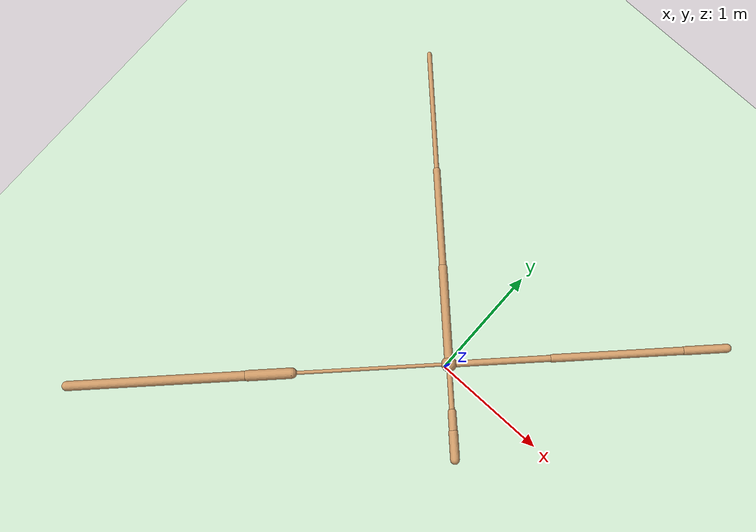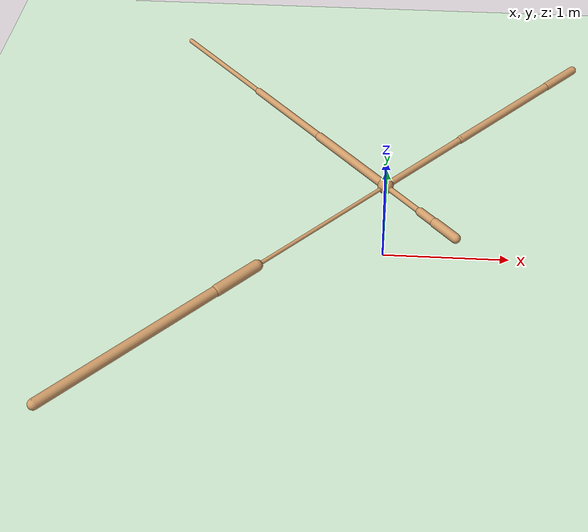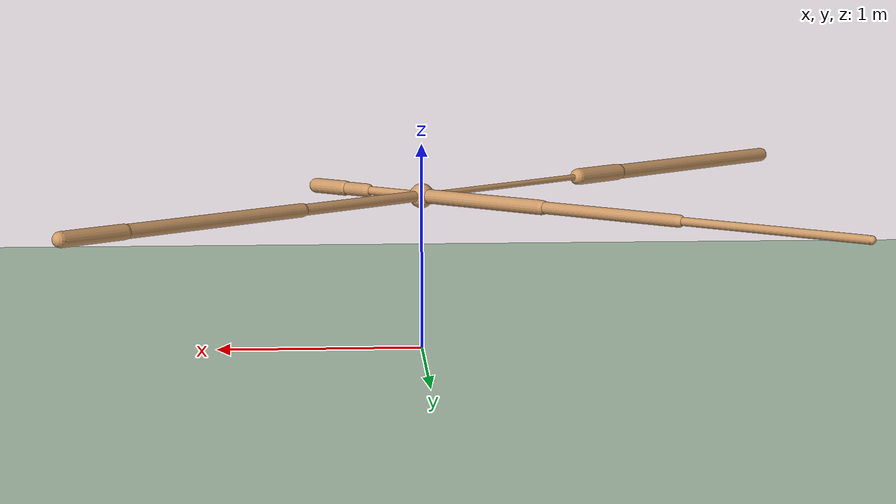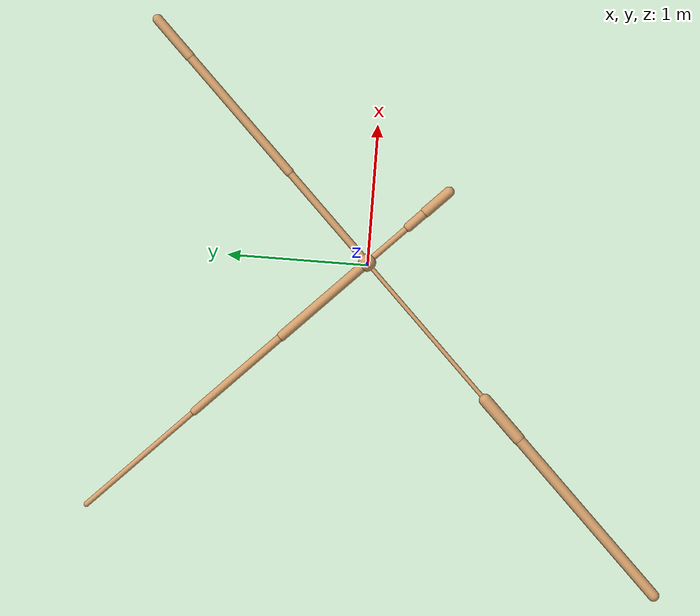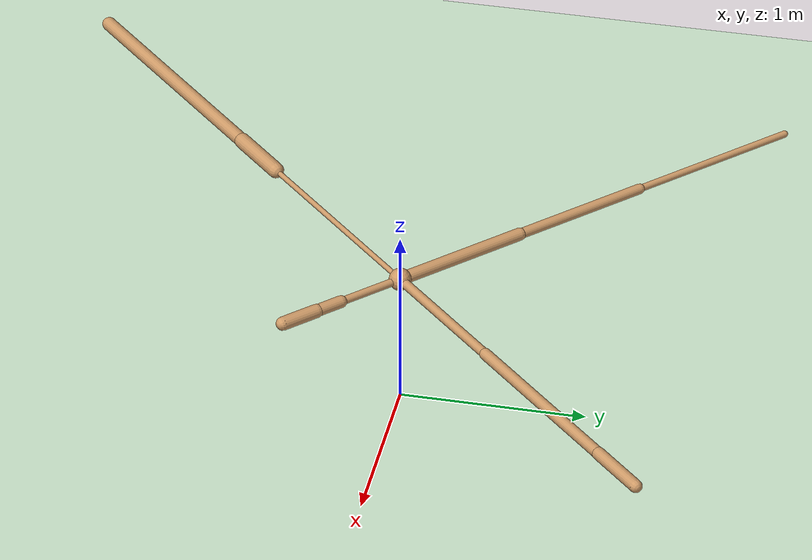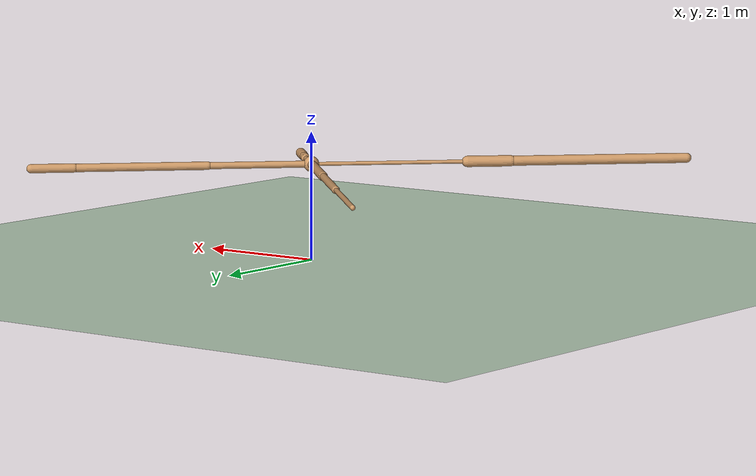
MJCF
<mujoco model="ant">
  <compiler angle="degree" coordinate="local" inertiafromgeom="true" />
  <option integrator="RK4" timestep="0.01" />
  <custom>
    <numeric data="0.0 0.0 0.55 1.0 0.0 0.0 0.0 0.0 1.0 0.0 -1.0 0.0 -1.0 0.0 1.0" name="init_qpos" />
  </custom>
  <default>
    <joint armature="1" damping="1" limited="true" />
    <geom conaffinity="0" condim="3" density="5.0" friction="1 0.5 0.5" margin="0.01" rgba="0.8 0.6 0.4 1" />
  </default>
  <asset>
    <texture builtin="gradient" height="100" rgb1="1 1 1" rgb2="0 0 0" type="skybox" width="100" />
    <texture builtin="flat" height="1278" mark="cross" markrgb="1 1 1" name="texgeom" random="0.01" rgb1="0.8 0.6 0.4" rgb2="0.8 0.6 0.4" type="cube" width="127" />
    <texture builtin="checker" height="100" name="texplane" rgb1="0 0 0" rgb2="0.8 0.8 0.8" type="2d" width="100" />
    <material name="MatPlane" reflectance="0.5" shininess="1" specular="1" texrepeat="60 60" texture="texplane" />
    <material name="geom" texture="texgeom" texuniform="true" />
  </asset>
  <worldbody>
    <light cutoff="100" diffuse="1 1 1" dir="-0 0 -1.3" directional="true" exponent="1" pos="0 0 1.3" specular=".1 .1 .1" />
    <geom conaffinity="1" condim="3" material="MatPlane" name="floor" pos="0 0 0" rgba="0.8 0.9 0.8 1" size="40 40 40" type="plane" />
    <body name="torso" pos="0 0 0.75">
      <camera name="track" mode="trackcom" pos="0 -11 5" xyaxes="1 0 0 0 0.5 1" />
      <geom name="torso_geom" pos="0 0 0" size="0.060483016073703766" type="sphere" />
      <joint armature="0" damping="0" limited="false" margin="0.01" name="root" pos="0 0 0" type="free" />
      <body name="front_left_leg" pos="0 0 0">
        <geom fromto="0 0 0 0.5678693652153015 0.5678693652153015 0" name="aux_1_geom" size="0.02614038996398449" type="capsule" />
        <body name="aux_1" pos="0.5678693652153015 0.5678693652153015 0">
          <joint axis="0 0 1" name="hip_1" pos="0.0 0.0 0.0" range="-30 30" type="hinge" />
          <geom fromto="0 0 0 0.726142406463623 0.726142406463623 0" name="left_leg_geom" size="0.03159584850072861" type="capsule" />
          <body name="left_leg_geom_aux" pos="0.726142406463623 0.726142406463623 0">
            <joint axis="-1 1 0" name="ankle_1" pos="0.0 0.0 0.0" range="30 70" type="hinge" />
            <geom fromto="0 0 0 0.23257124423980713 0.23257124423980713 0" name="left_ankle_geom" size="0.034314464777708054" type="capsule" />
          </body>
        </body>
      </body>
      <body name="front_right_leg" pos="0 0 0">
        <geom fromto="0 0 0 -0.5353786945343018 0.5353786945343018 0" name="aux_2_geom" size="0.03455238789319992" type="capsule" />
        <body name="aux_2" pos="-0.5353786945343018 0.5353786945343018 0">
          <joint axis="0 0 1" name="hip_2" pos="0.0 0.0 0.0" range="-30 30" type="hinge" />
          <geom fromto="0 0 0 -0.5476577877998352 0.5476577877998352 0" name="right_leg_geom" size="0.028262866660952568" type="capsule" />
          <body name="right_leg_geom_aux" pos="-0.5476577877998352 0.5476577877998352 0">
            <joint axis="1 1 0" name="ankle_2" pos="0.0 0.0 0.0" range="-70 -30" type="hinge" />
            <geom fromto="0 0 0 -0.6766546964645386 0.6766546964645386 0" name="right_ankle_geom" size="0.01908711902797222" type="capsule" />
          </body>
        </body>
      </body>
      <body name="back_leg" pos="0 0 0">
        <geom fromto="0 0 0 -0.8623289465904236 -0.8623289465904236 0" name="aux_3_geom" size="0.014527929946780205" type="capsule" />
        <body name="aux_3" pos="-0.8623289465904236 -0.8623289465904236 0">
          <joint axis="0 0 1" name="hip_3" pos="0.0 0.0 0.0" range="-30 30" type="hinge" />
          <geom fromto="0 0 0 -0.24099373817443848 -0.24099373817443848 0" name="back_leg_geom" size="0.04303178936243057" type="capsule" />
          <body name="back_leg_geom_aux" pos="-0.24099373817443848 -0.24099373817443848 0">
            <joint axis="-1 1 0" name="ankle_3" pos="0.0 0.0 0.0" range="-70 -30" type="hinge" />
            <geom fromto="0 0 0 -0.9862223267555237 -0.9862223267555237 0" name="third_ankle_geom" size="0.038488585501909256" type="capsule" />
          </body>
        </body>
      </body>
      <body name="right_back_leg" pos="0 0 0">
        <geom fromto="0 0 0 0.26080477237701416 -0.26080477237701416 0" name="aux_4_geom" size="0.02163182571530342" type="capsule" />
        <body name="aux_4" pos="0.26080477237701416 -0.26080477237701416 0">
          <joint axis="0 0 1" name="hip_4" pos="0.0 0.0 0.0" range="-30 30" type="hinge" />
          <geom fromto="0 0 0 0.10739878565073013 -0.10739878565073013 0" name="rightback_leg_geom" size="0.03301774710416794" type="capsule" />
          <body name="rightback_leg_geom_aux" pos="0.10739878565073013 -0.10739878565073013 0">
            <joint axis="1 1 0" name="ankle_4" pos="0.0 0.0 0.0" range="30 70" type="hinge" />
            <geom fromto="0 0 0 0.14671772718429565 -0.14671772718429565 0" name="fourth_ankle_geom" size="0.03694552928209305" type="capsule" />
          </body>
        </body>
      </body>
    </body>
  </worldbody>
  <actuator>
    <motor ctrllimited="true" ctrlrange="-1.0 1.0" joint="hip_4" gear="150" />
    <motor ctrllimited="true" ctrlrange="-1.0 1.0" joint="ankle_4" gear="150" />
    <motor ctrllimited="true" ctrlrange="-1.0 1.0" joint="hip_1" gear="150" />
    <motor ctrllimited="true" ctrlrange="-1.0 1.0" joint="ankle_1" gear="150" />
    <motor ctrllimited="true" ctrlrange="-1.0 1.0" joint="hip_2" gear="150" />
    <motor ctrllimited="true" ctrlrange="-1.0 1.0" joint="ankle_2" gear="150" />
    <motor ctrllimited="true" ctrlrange="-1.0 1.0" joint="hip_3" gear="150" />
    <motor ctrllimited="true" ctrlrange="-1.0 1.0" joint="ankle_3" gear="150" />
  </actuator>
</mujoco>
